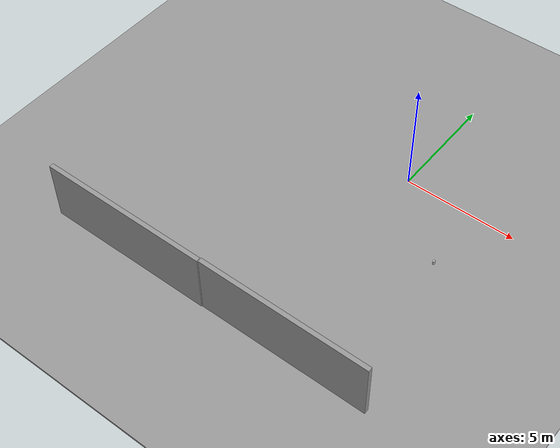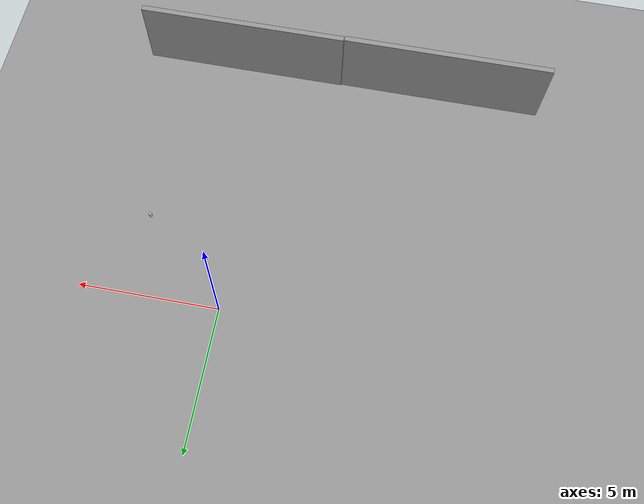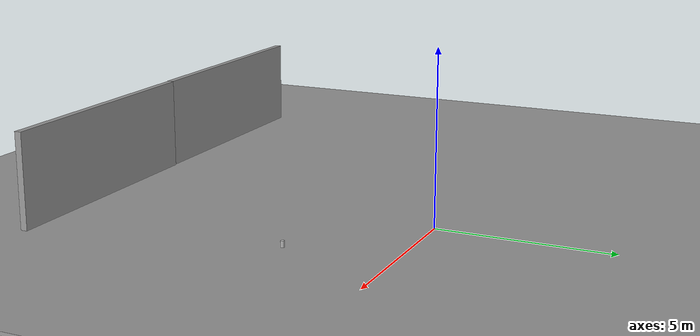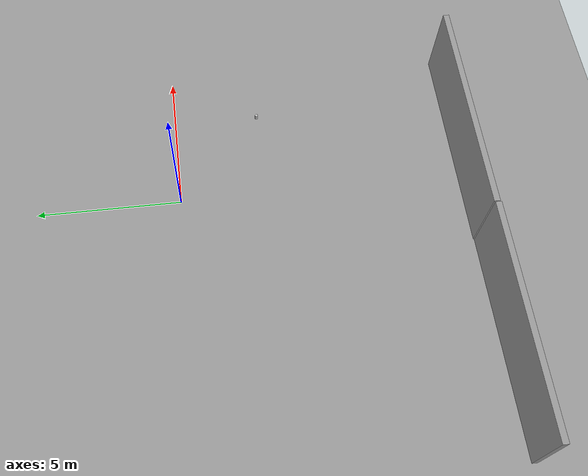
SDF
<sdf version="1.6">
 <world name="default">
  <model name="ground_plane">
   <static>1</static>
   <link name="link">
    <collision name="collision">
     <geometry><plane><normal>0 0 1</normal><size>100 100</size></plane></geometry>
     <surface><friction><ode><mu>100</mu><mu2>50</mu2></ode></friction></surface>
    </collision>
    <visual name="visual">
     <cast_shadows>0</cast_shadows>
     <geometry><plane><normal>0 0 1</normal><size>100 100</size></plane></geometry>
     <material>
      <script><uri>file://media/materials/scripts/gazebo.material</uri><name>Gazebo/Grey</name></script>
     </material>
    </visual>
   </link>
  </model>
  <model name="ground_plane_0">
   <static>1</static>
   <link name="link">
    <collision name="collision">
     <geometry><plane><normal>0 0 1</normal><size>100 100</size></plane></geometry>
     <surface>
      <contact><collide_bitmask>65535</collide_bitmask></contact>
      <friction><ode><mu>100</mu><mu2>50</mu2></ode></friction>
     </surface>
    </collision>
    <visual name="visual">
     <cast_shadows>0</cast_shadows>
     <geometry><plane><normal>0 0 1</normal><size>100 100</size></plane></geometry>
     <material>
      <script><uri>file://media/materials/scripts/gazebo.material</uri><name>Gazebo/Grey</name></script>
     </material>
    </visual>
   </link>
   <pose>11.2195 -13.9352 0 0 -0 0</pose>
  </model>
  <model name="grey_wall">
   <static>1</static>
   <link name="link">
    <pose>0 0 1.4 0 -0 0</pose>
    <collision name="collision"><geometry><box><size>7.5 0.2 2.8</size></box></geometry></collision>
    <visual name="visual">
     <cast_shadows>0</cast_shadows>
     <geometry><box><size>7.5 0.2 2.8</size></box></geometry>
     <material>
      <script>
       <uri>model://grey_wall/materials/scripts</uri>
       <uri>model://grey_wall/materials/textures</uri>
       <name>vrc/grey_wall</name>
      </script>
     </material>
    </visual>
   </link>
   <pose>-6.29383 -9.96159 0 0 -0 0</pose>
  </model>
  <model name="grey_wall_0">
   <static>1</static>
   <link name="link">
    <pose>0 0 1.4 0 -0 0</pose>
    <collision name="collision"><geometry><box><size>7.5 0.2 2.8</size></box></geometry></collision>
    <visual name="visual">
     <cast_shadows>0</cast_shadows>
     <geometry><box><size>7.5 0.2 2.8</size></box></geometry>
     <material>
      <script>
       <uri>model://grey_wall/materials/scripts</uri>
       <uri>model://grey_wall/materials/textures</uri>
       <name>vrc/grey_wall</name>
      </script>
     </material>
    </visual>
   </link>
   <pose>1.22988 -9.93121 0 0 -0 0</pose>
  </model>
  <model name="beer">
   <link name="link">
    <pose>0 0 0.115 0 -0 0</pose>
    <inertial>
     <mass>0.39</mass>
     <inertia><ixx>0.00058</ixx><ixy>0</ixy><ixz>0</ixz><iyy>0.00058</iyy><iyz>0</iyz><izz>0.00019</izz></inertia>
    </inertial>
    <collision name="collision">
     <geometry><cylinder><radius>0.055</radius><length>0.23</length></cylinder></geometry>
    </collision>
    <visual name="visual">
     <geometry><cylinder><radius>0.055</radius><length>0.23</length></cylinder></geometry>
     <material>
      <script>
       <uri>model://beer/materials/scripts</uri>
       <uri>model://beer/materials/textures</uri>
       <name>Beer/Diffuse</name>
      </script>
     </material>
    </visual>
   </link>
   <pose>3.21238 -2.99218 -8e-06 -1e-06 -0 1.3e-05</pose>
  </model>
 </world>
</sdf>
